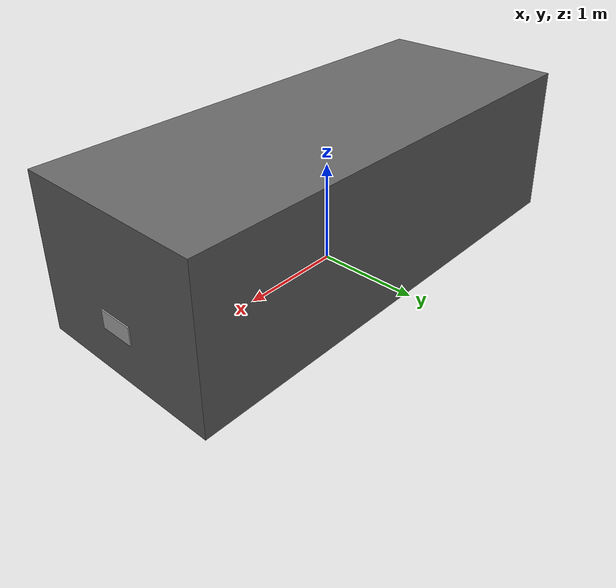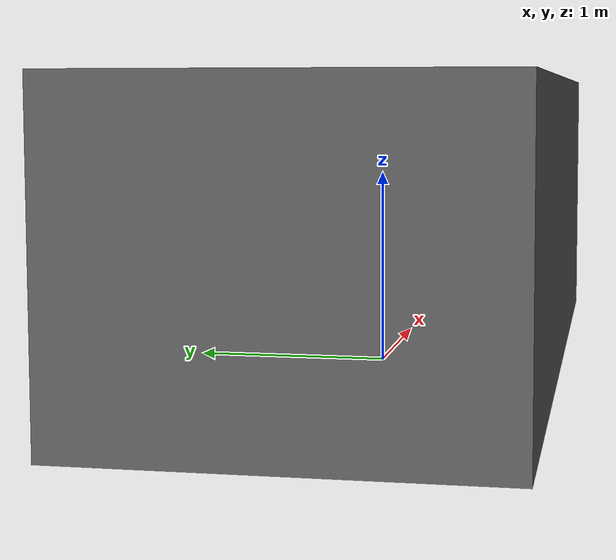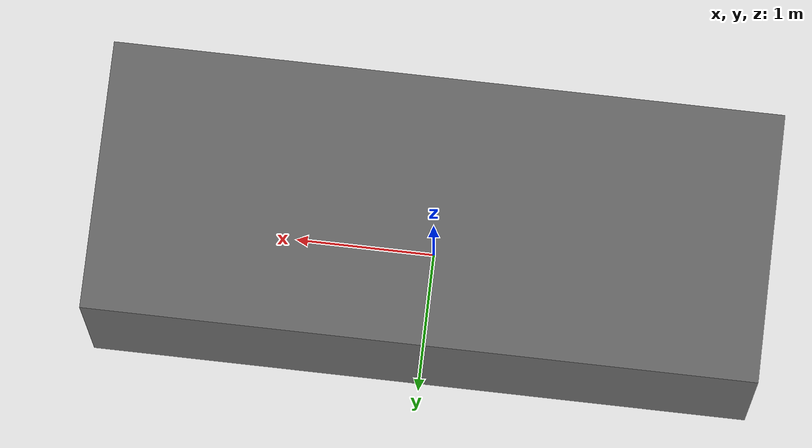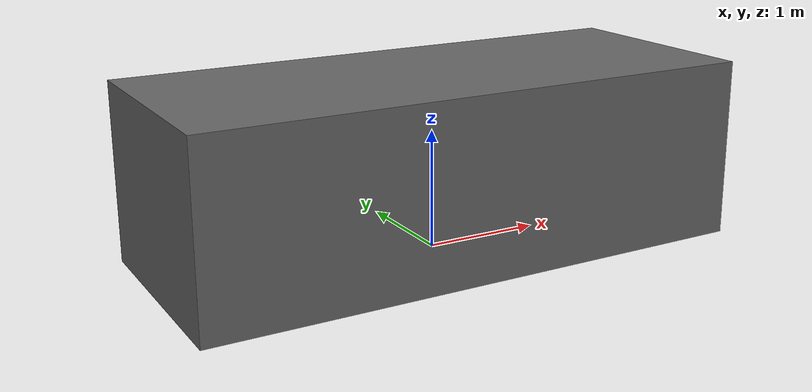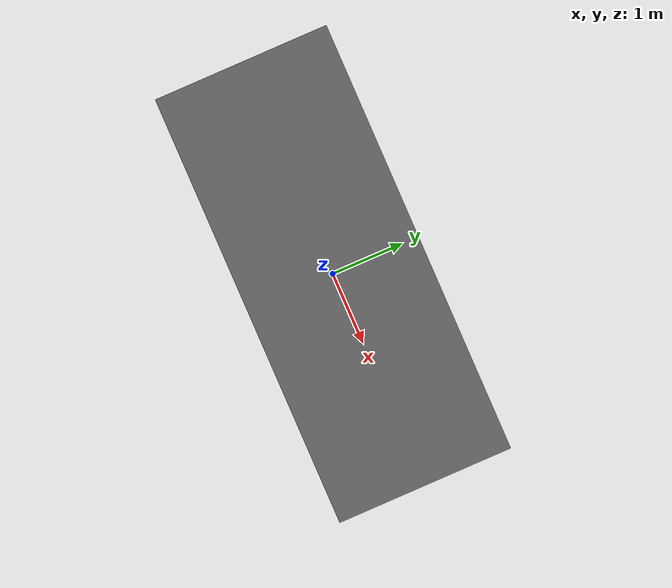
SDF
<?xml version="1.0" ?>
<sdf version="1.6">
  <model name="target_car">
    <static>true</static>

    <link name="body">
      <!-- 박스 중심을 z=0.75 에 둬서 높이 1.5 박스가 바닥(z=0)에 앉음 -->
      <pose>0 0 0.75 0 0 0</pose>

      <collision name="col">
        <geometry><box><size>4.7 1.9 1.5</size></box></geometry>
      </collision>

      <visual name="body_vis">
        <geometry><box><size>4.7 1.9 1.5</size></box></geometry>
        <material>
          <ambient>0.3 0.3 0.3 1</ambient>
          <diffuse>0.4 0.4 0.4 1</diffuse>
          <specular>0.1 0.1 0.1 1</specular>
        </material>
      </visual>

      <!-- 번호판: pose 는 body 링크(중심) 기준 상대값.
           앞면 x=+2.35 → 2.36 이면 1cm 앞으로 띄워 z-fighting 방지.
           월드 z=0.50 목표 → 링크중심 0.75 기준 상대값 = 0.50 - 0.75 = -0.25 -->
      <visual name="plate">
        <pose>2.36 0 -0.25 0 0 0</pose>
        <geometry><box><size>0.01 0.335 0.17</size></box></geometry>
        <material>
          <script>
            <uri>model://target_car/materials/scripts</uri>
            <uri>model://target_car/materials/textures</uri>
            <name>CarPlate/A01</name>
          </script>
        </material>
      </visual>
    </link>
  </model>
</sdf>
